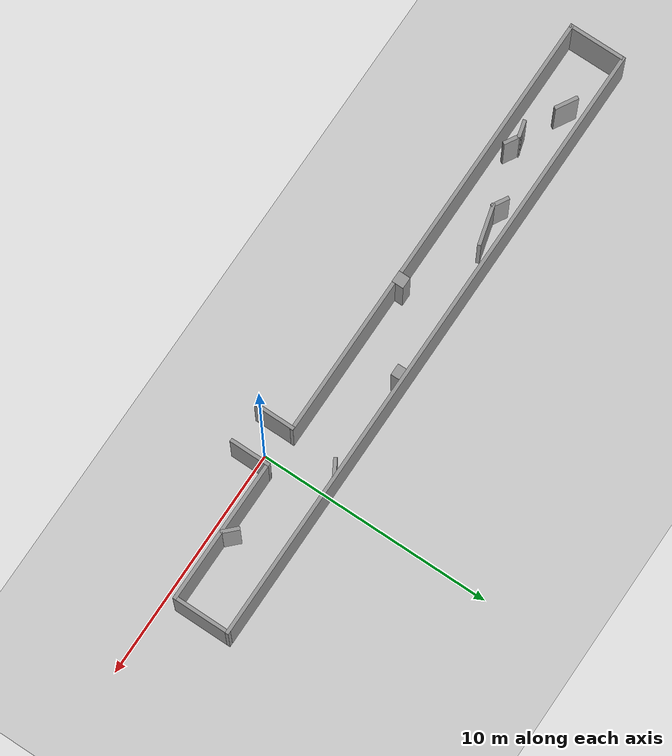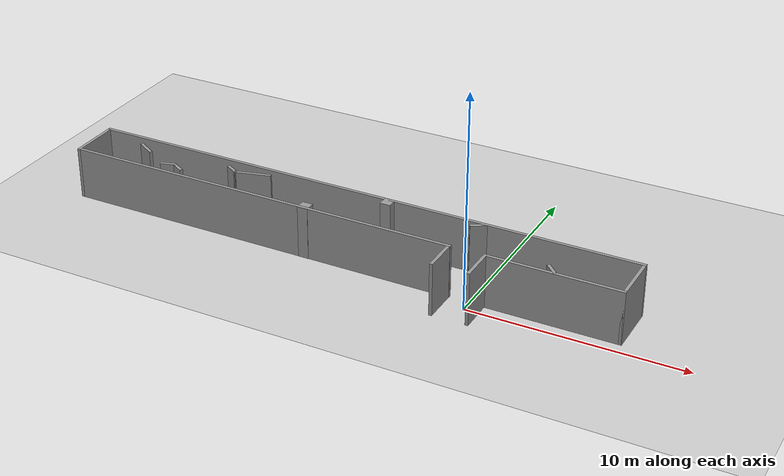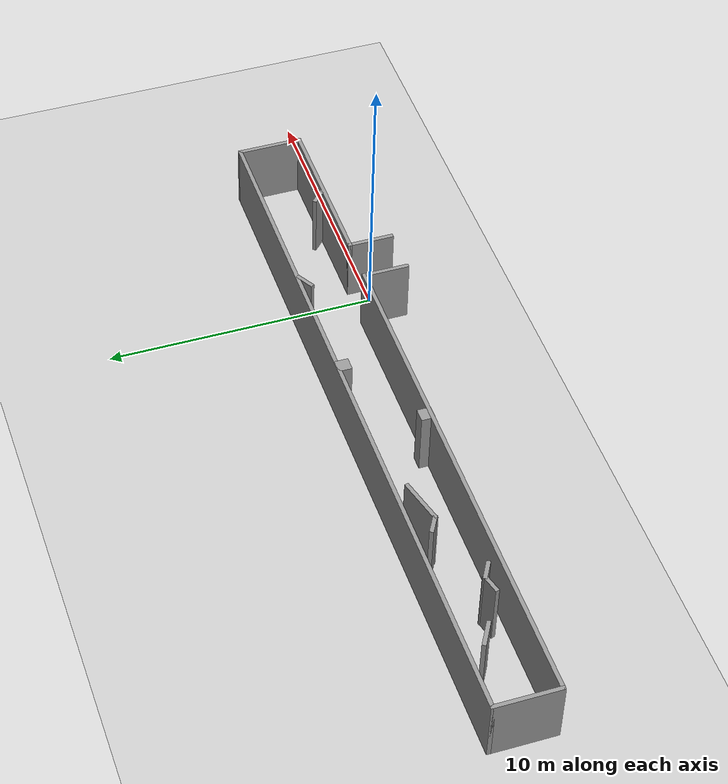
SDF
<sdf version="1.7">
 <world name="default">
  <light name="sun" type="directional">
   <pose>0 0 10 0 -0 0</pose>
   <diffuse>0.8 0.8 0.8 1</diffuse>
   <specular>0.2 0.2 0.2 1</specular>
   <attenuation>
    <range>1000</range>
    <constant>0.9</constant>
    <linear>0.01</linear>
    <quadratic>0.001</quadratic>
   </attenuation>
   <direction>-0.5 0.1 -0.9</direction>
   <spot><inner_angle>0</inner_angle><outer_angle>0</outer_angle><falloff>0</falloff></spot>
  </light>
  <model name="ground_plane">
   <static>1</static>
   <link name="link">
    <collision name="collision">
     <geometry><plane><normal>0 0 1</normal><size>100 100</size></plane></geometry>
     <surface>
      <contact><collide_bitmask>65535</collide_bitmask></contact>
      <friction><ode><mu>100</mu><mu2>50</mu2></ode></friction>
     </surface>
    </collision>
    <visual name="visual">
     <cast_shadows>0</cast_shadows>
     <geometry><plane><normal>0 0 1</normal><size>100 100</size></plane></geometry>
     <material>
      <script><uri>file://media/materials/scripts/gazebo.material</uri><name>Gazebo/Grey</name></script>
     </material>
    </visual>
   </link>
  </model>
  <gravity>0 0 -9.8</gravity>
  <magnetic_field>6e-06 2.3e-05 -4.2e-05</magnetic_field>
  <atmosphere type="adiabatic"/>
  <physics type="ode">
   <max_step_size>0.001</max_step_size>
   <real_time_factor>1</real_time_factor>
   <real_time_update_rate>1000</real_time_update_rate>
  </physics>
  <scene><ambient>0.4 0.4 0.4 1</ambient><background>0.7 0.7 0.7 1</background><shadows>1</shadows></scene>
  <audio><device>default</device></audio>
  <spherical_coordinates>
   <surface_model>EARTH_WGS84</surface_model>
   <latitude_deg>0</latitude_deg>
   <longitude_deg>0</longitude_deg>
   <elevation>0</elevation>
   <heading_deg>0</heading_deg>
  </spherical_coordinates>
  <model name="testworld6">
   <pose>-6.70471 0.974872 0 0 -0 0</pose>
   <link name="Wall_0">
    <collision name="Wall_0_Collision">
     <geometry><box><size>1.75 0.15 2.5</size></box></geometry>
     <pose>0 0 1.25 0 -0 0</pose>
    </collision>
    <visual name="Wall_0_Visual">
     <pose>0 0 1.25 0 -0 0</pose>
     <geometry><box><size>1.75 0.15 2.5</size></box></geometry>
     <material>
      <script><uri>file://media/materials/scripts/gazebo.material</uri><name>Gazebo/Grey</name></script>
      <ambient>1 1 1 1</ambient>
     </material>
     <meta><layer>0</layer></meta>
    </visual>
    <pose>5.665 -1.185 0 0 -0 1.5708</pose>
   </link>
   <link name="Wall_14">
    <collision name="Wall_14_Collision">
     <geometry><box><size>0.51 0.5 2.5</size></box></geometry>
     <pose>0 0 1.25 0 -0 0</pose>
    </collision>
    <visual name="Wall_14_Visual">
     <pose>0 0 1.25 0 -0 0</pose>
     <geometry><box><size>0.51 0.5 2.5</size></box></geometry>
     <material>
      <script><uri>file://media/materials/scripts/gazebo.material</uri><name>Gazebo/Grey</name></script>
      <ambient>1 1 1 1</ambient>
     </material>
     <meta><layer>0</layer></meta>
    </visual>
    <pose>-1.383 -0.196 0 0 -0 1.5708</pose>
   </link>
   <link name="Wall_18">
    <collision name="Wall_18_Collision">
     <geometry><box><size>0.51 0.5 2.5</size></box></geometry>
     <pose>0 0 1.25 0 -0 0</pose>
    </collision>
    <visual name="Wall_18_Visual">
     <pose>0 0 1.25 0 -0 0</pose>
     <geometry><box><size>0.51 0.5 2.5</size></box></geometry>
     <material>
      <script><uri>file://media/materials/scripts/gazebo.material</uri><name>Gazebo/Grey</name></script>
      <ambient>1 1 1 1</ambient>
     </material>
     <meta><layer>0</layer></meta>
    </visual>
    <pose>1.6498 1.7892 0 0 -0 -1.5708</pose>
   </link>
   <link name="Wall_2">
    <collision name="Wall_2_Collision">
     <geometry><box><size>1.75 0.15 2.5</size></box></geometry>
     <pose>0 0 1.25 0 -0 0</pose>
    </collision>
    <visual name="Wall_2_Visual">
     <pose>0 0 1.25 0 -0 0</pose>
     <geometry><box><size>1.75 0.15 2.5</size></box></geometry>
     <material>
      <script><uri>file://media/materials/scripts/gazebo.material</uri><name>Gazebo/Grey</name></script>
      <ambient>1 1 1 1</ambient>
     </material>
     <meta><layer>0</layer></meta>
    </visual>
    <pose>7.325 -1.165 0 0 -0 1.5708</pose>
   </link>
   <link name="Wall_27">
    <collision name="Wall_27_Collision">
     <geometry><box><size>0.75 0.15 2.5</size></box></geometry>
     <pose>0 0 1.25 0 -0 0</pose>
    </collision>
    <visual name="Wall_27_Visual">
     <pose>0 0 1.25 0 -0 0</pose>
     <geometry><box><size>0.75 0.15 2.5</size></box></geometry>
     <material>
      <script><uri>file://media/materials/scripts/gazebo.material</uri><name>Gazebo/Grey</name></script>
      <ambient>1 1 1 1</ambient>
     </material>
     <meta><layer>0</layer></meta>
    </visual>
    <pose>10.1884 -0.114372 0 0 -0 -0.785398</pose>
   </link>
   <link name="Wall_29">
    <collision name="Wall_29_Collision">
     <geometry><box><size>0.75 0.15 2.5</size></box></geometry>
     <pose>0 0 1.25 0 -0 0</pose>
    </collision>
    <visual name="Wall_29_Visual">
     <pose>0 0 1.25 0 -0 0</pose>
     <geometry><box><size>0.75 0.15 2.5</size></box></geometry>
     <material>
      <script><uri>file://media/materials/scripts/gazebo.material</uri><name>Gazebo/Grey</name></script>
      <ambient>1 1 1 1</ambient>
     </material>
     <meta><layer>0</layer></meta>
    </visual>
    <pose>6.02927 1.77594 0 0 -0 0.523599</pose>
   </link>
   <link name="Wall_3">
    <collision name="Wall_3_Collision">
     <geometry><box><size>6.25 0.15 2.5</size></box></geometry>
     <pose>0 0 1.25 0 -0 0</pose>
    </collision>
    <visual name="Wall_3_Visual">
     <pose>0 0 1.25 0 -0 0</pose>
     <geometry><box><size>6.25 0.15 2.5</size></box></geometry>
     <material>
      <script><uri>file://media/materials/scripts/gazebo.material</uri><name>Gazebo/Grey</name></script>
      <ambient>1 1 1 1</ambient>
     </material>
     <meta><layer>0</layer></meta>
    </visual>
    <pose>10.375 -0.365 0 0 -0 0</pose>
   </link>
   <link name="Wall_32">
    <collision name="Wall_32_Collision">
     <geometry><box><size>1 0.15 2.5</size></box></geometry>
     <pose>0 0 1.25 0 -0 0</pose>
    </collision>
    <visual name="Wall_32_Visual">
     <pose>0 0 1.25 0 -0 0</pose>
     <geometry><box><size>1 0.15 2.5</size></box></geometry>
     <material>
      <script><uri>file://media/materials/scripts/gazebo.material</uri><name>Gazebo/Grey</name></script>
      <ambient>1 1 1 1</ambient>
     </material>
     <meta><layer>0</layer></meta>
    </visual>
    <pose>-10.7331 1.1552 0 0 -0 -0.523599</pose>
   </link>
   <link name="Wall_34">
    <collision name="Wall_34_Collision">
     <geometry><box><size>0.75 0.15 2.5</size></box></geometry>
     <pose>0 0 1.25 0 -0 0</pose>
    </collision>
    <visual name="Wall_34_Visual">
     <pose>0 0 1.25 0 -0 0</pose>
     <geometry><box><size>0.75 0.15 2.5</size></box></geometry>
     <material>
      <script><uri>file://media/materials/scripts/gazebo.material</uri><name>Gazebo/Grey</name></script>
      <ambient>1 1 1 1</ambient>
     </material>
     <meta><layer>0</layer></meta>
    </visual>
    <pose>-8.90993 0.312587 0 0 -0 0.261799</pose>
   </link>
   <link name="Wall_35">
    <collision name="Wall_35_Collision">
     <geometry><box><size>0.75 0.15 2.5</size></box></geometry>
     <pose>0 0 1.25 0 -0 0</pose>
    </collision>
    <visual name="Wall_35_Visual">
     <pose>0 0 1.25 0 -0 0</pose>
     <geometry><box><size>0.75 0.15 2.5</size></box></geometry>
     <material>
      <script><uri>file://media/materials/scripts/gazebo.material</uri><name>Gazebo/Grey</name></script>
      <ambient>1 1 1 1</ambient>
     </material>
     <meta><layer>0</layer></meta>
    </visual>
    <pose>-8.36035 0.240233 0 0 -0 -0.523599</pose>
   </link>
   <link name="Wall_37">
    <collision name="Wall_37_Collision">
     <geometry><box><size>1.75 0.15 2.5</size></box></geometry>
     <pose>0 0 1.25 0 -0 0</pose>
    </collision>
    <visual name="Wall_37_Visual">
     <pose>0 0 1.25 0 -0 0</pose>
     <geometry><box><size>1.75 0.15 2.5</size></box></geometry>
     <material>
      <script><uri>file://media/materials/scripts/gazebo.material</uri><name>Gazebo/Grey</name></script>
      <ambient>1 1 1 1</ambient>
     </material>
     <meta><layer>0</layer></meta>
    </visual>
    <pose>-4.99641 1.28201 0 0 -0 -2.87979</pose>
   </link>
   <link name="Wall_38">
    <collision name="Wall_38_Collision">
     <geometry><box><size>0.75 0.15 2.5</size></box></geometry>
     <pose>0 0 1.25 0 -0 0</pose>
    </collision>
    <visual name="Wall_38_Visual">
     <pose>0 0 1.25 0 -0 0</pose>
     <geometry><box><size>0.75 0.15 2.5</size></box></geometry>
     <material>
      <script><uri>file://media/materials/scripts/gazebo.material</uri><name>Gazebo/Grey</name></script>
      <ambient>1 1 1 1</ambient>
     </material>
     <meta><layer>0</layer></meta>
    </visual>
    <pose>-6.02896 1.22495 0 0 -0 2.61799</pose>
   </link>
   <link name="Wall_4">
    <collision name="Wall_4_Collision">
     <geometry><box><size>2.5 0.15 2.5</size></box></geometry>
     <pose>0 0 1.25 0 -0 0</pose>
    </collision>
    <visual name="Wall_4_Visual">
     <pose>0 0 1.25 0 -0 0</pose>
     <geometry><box><size>2.5 0.15 2.5</size></box></geometry>
     <material>
      <script><uri>file://media/materials/scripts/gazebo.material</uri><name>Gazebo/Grey</name></script>
      <ambient>1 1 1 1</ambient>
     </material>
     <meta><layer>0</layer></meta>
    </visual>
    <pose>13.425 0.81 0 0 -0 1.5708</pose>
   </link>
   <link name="Wall_5">
    <collision name="Wall_5_Collision">
     <geometry><box><size>27 0.15 2.5</size></box></geometry>
     <pose>0 0 1.25 0 -0 0</pose>
    </collision>
    <visual name="Wall_5_Visual">
     <pose>0 0 1.25 0 -0 0</pose>
     <geometry><box><size>27 0.15 2.5</size></box></geometry>
     <material>
      <script><uri>file://media/materials/scripts/gazebo.material</uri><name>Gazebo/Grey</name></script>
      <ambient>1 1 1 1</ambient>
     </material>
     <meta><layer>0</layer></meta>
    </visual>
    <pose>0 1.985 0 0 -0 3.14159</pose>
   </link>
   <link name="Wall_6">
    <collision name="Wall_6_Collision">
     <geometry><box><size>2.5 0.15 2.5</size></box></geometry>
     <pose>0 0 1.25 0 -0 0</pose>
    </collision>
    <visual name="Wall_6_Visual">
     <pose>0 0 1.25 0 -0 0</pose>
     <geometry><box><size>2.5 0.15 2.5</size></box></geometry>
     <material>
      <script><uri>file://media/materials/scripts/gazebo.material</uri><name>Gazebo/Grey</name></script>
      <ambient>1 1 1 1</ambient>
     </material>
     <meta><layer>0</layer></meta>
    </visual>
    <pose>-13.425 0.81 0 0 -0 -1.5708</pose>
   </link>
   <link name="Wall_7">
    <collision name="Wall_7_Collision">
     <geometry><box><size>19.25 0.15 2.5</size></box></geometry>
     <pose>0 0 1.25 0 -0 0</pose>
    </collision>
    <visual name="Wall_7_Visual">
     <pose>0 0 1.25 0 -0 0</pose>
     <geometry><box><size>19.25 0.15 2.5</size></box></geometry>
     <material>
      <script><uri>file://media/materials/scripts/gazebo.material</uri><name>Gazebo/Grey</name></script>
      <ambient>1 1 1 1</ambient>
     </material>
     <meta><layer>0</layer></meta>
    </visual>
    <pose>-3.875 -0.365 0 0 -0 0</pose>
   </link>
   <static>1</static>
  </model>
 </world>
</sdf>
